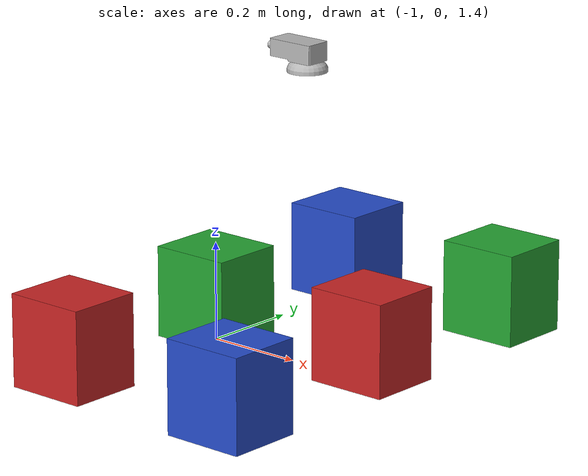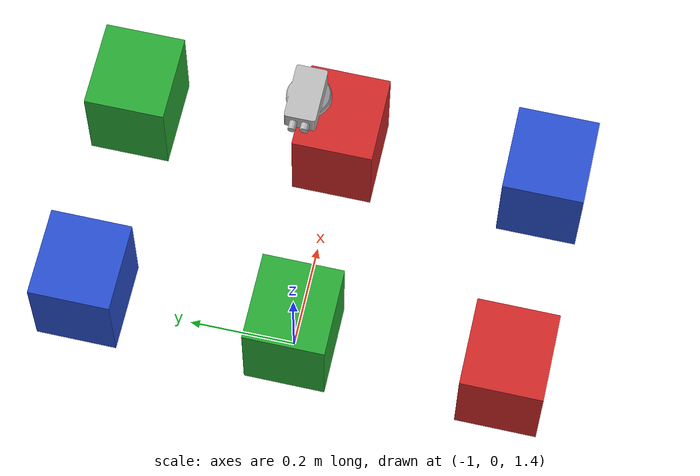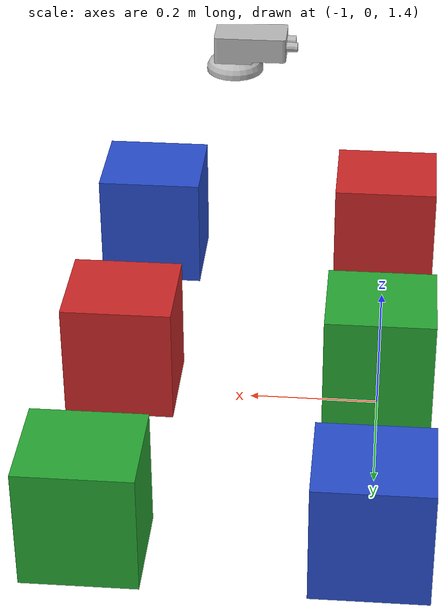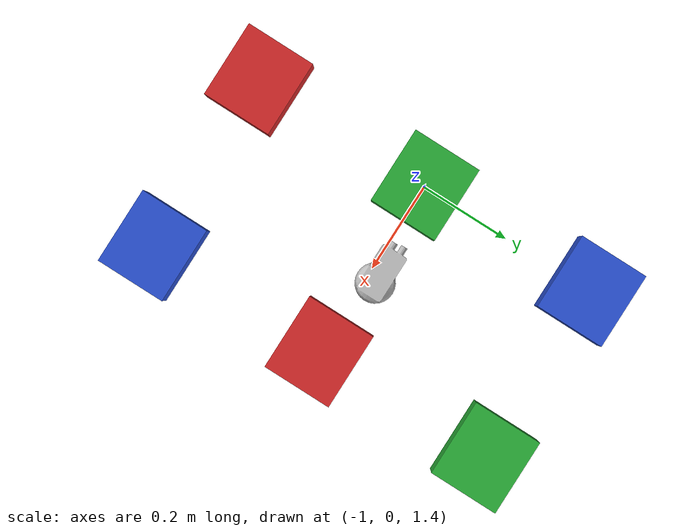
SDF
<sdf version="1.6">
 <world name="default">
  <plugin name="ros_link_attacher_plugin" filename="libgazebo_ros_link_attacher.so"/>
  <gravity>0 0 -9.8</gravity>
  <physics default="0" name="default_physics" type="ode">
   <max_step_size>0.001</max_step_size>
   <real_time_factor>1</real_time_factor>
   <real_time_update_rate>1000</real_time_update_rate>
  </physics>
  <include><uri>model://logical_camera2</uri><pose>-0.8 0 2.0 0 1.5708 0</pose></include>
  <model name="package_box_r1">
   <include>
    <uri>model://package_box_red</uri>
    <pose>-0.6 0 1.5 0 1.5708 0</pose>
    <static>false</static>
    <material>Gazebo/Red</material>
   </include>
  </model>
  <model name="package_box_r2">
   <include>
    <uri>model://package_box_red</uri>
    <pose>-1.0 -0.4 1.5 0 1.5708 0</pose>
    <static>false</static>
    <material>Gazebo/Red</material>
   </include>
  </model>
  <model name="package_box_g1">
   <include>
    <uri>model://package_box_green</uri>
    <pose>-0.6 0.4 1.5 0 1.5708 0</pose>
    <static>false</static>
    <material>Gazebo/Red</material>
   </include>
  </model>
  <model name="package_box_g2">
   <include>
    <uri>model://package_box_green</uri>
    <pose>-1.0 0 1.5 0 1.5708 0</pose>
    <static>false</static>
    <material>Gazebo/Red</material>
   </include>
  </model>
  <model name="package_box_b1">
   <include>
    <uri>model://package_box_blue</uri>
    <pose>-0.6 -0.4 1.5 0 1.5708 0</pose>
    <static>false</static>
    <material>Gazebo/Red</material>
   </include>
  </model>
  <model name="package_box_b2">
   <include>
    <uri>model://package_box_blue</uri>
    <pose>-1.0 0.4 1.5 0 1.5708 0</pose>
    <static>false</static>
    <material>Gazebo/Red</material>
   </include>
  </model>
  <light name="Warehouse_CeilingLight_003" type="point">
   <pose>0 0 5 0 0 0</pose>
   <diffuse>0.5 0.5 0.5 1</diffuse>
   <specular>0.2 0.2 0.2 1</specular>
   <attenuation>
    <range>80</range>
    <constant>0.1</constant>
    <linear>0.01</linear>
    <quadratic>0.001</quadratic>
   </attenuation>
   <direction>0 0 -1</direction>
  </light>
 </world>
</sdf>

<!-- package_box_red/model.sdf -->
<sdf version='1.6'>
  <model name='package_box_red'>
    <link name='link'>
      <inertial>
        <mass>1</mass>
        <inertia>
          <ixx>0.166667</ixx>
          <ixy>0</ixy>
          <ixz>0</ixz>
          <iyy>0.166667</iyy>
          <iyz>0</iyz>
          <izz>0.166667</izz>
        </inertia>
        <pose frame=''>0 0 0 0 -0 0</pose>
      </inertial>
      <self_collide>0</self_collide>
      <enable_wind>0</enable_wind>
      <kinematic>0</kinematic>
      <pose frame=''>0 0 0 -0 -0 -0</pose>
      <gravity>1</gravity>
      <visual name='visual'>
        <geometry>
          <box>
            <size>0.186354 0.153313 0.168908</size>
          </box>
        </geometry>
        <material>
          <script>
            <name>Gazebo/Red</name>
            <uri>file://media/materials/scripts/gazebo.material</uri>
          </script>
          <shader type='pixel'>
            <normal_map>__default__</normal_map>
          </shader>
          <ambient>1 0 0 1</ambient>
          <diffuse>1 0 0 1</diffuse>
          <specular>0.1 0.1 0.1 1</specular>
          <emissive>0 0 0 0</emissive>
        </material>
        <pose frame=''>0 0 0 0 -0 0</pose>
        <transparency>0</transparency>
        <cast_shadows>1</cast_shadows>
      </visual>
      <collision name='collision'>
        <laser_retro>0</laser_retro>
        <max_contacts>10</max_contacts>
        <pose frame=''>0 0 0 0 -0 0</pose>
        <geometry>
          <box>
            <size>0.186354 0.153313 0.168908</size>
          </box>
        </geometry>
        <surface>
          <friction>
            <ode>
              <mu>1</mu>
              <mu2>1</mu2>
              <fdir1>0 0 0</fdir1>
              <slip1>0</slip1>
              <slip2>0</slip2>
            </ode>
            <torsional>
              <coefficient>1</coefficient>
              <patch_radius>0</patch_radius>
              <surface_radius>0</surface_radius>
              <use_patch_radius>1</use_patch_radius>
              <ode>
                <slip>0</slip>
              </ode>
            </torsional>
          </friction>
          <bounce>
            <restitution_coefficient>0</restitution_coefficient>
            <threshold>1e+06</threshold>
          </bounce>
          <contact>
            <collide_without_contact>0</collide_without_contact>
            <collide_without_contact_bitmask>1</collide_without_contact_bitmask>
            <collide_bitmask>1</collide_bitmask>
            <ode>
              <soft_cfm>0</soft_cfm>
              <soft_erp>0.2</soft_erp>
              <kp>1e+13</kp>
              <kd>1</kd>
              <max_vel>0.01</max_vel>
              <min_depth>0</min_depth>
            </ode>
            <bullet>
              <split_impulse>1</split_impulse>
              <split_impulse_penetration_threshold>-0.01</split_impulse_penetration_threshold>
              <soft_cfm>0</soft_cfm>
              <soft_erp>0.2</soft_erp>
              <kp>1e+13</kp>
              <kd>1</kd>
            </bullet>
          </contact>
        </surface>
      </collision>
    </link>
    <static>0</static>
    <allow_auto_disable>1</allow_auto_disable>
  </model>
</sdf>

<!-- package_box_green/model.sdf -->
<sdf version='1.6'>
  <model name='package_box_green'>
    <link name='link'>
      <inertial>
        <mass>1</mass>
        <inertia>
          <ixx>0.166667</ixx>
          <ixy>0</ixy>
          <ixz>0</ixz>
          <iyy>0.166667</iyy>
          <iyz>0</iyz>
          <izz>0.166667</izz>
        </inertia>
        <pose frame=''>0 0 0 0 -0 0</pose>
      </inertial>
      <self_collide>0</self_collide>
      <enable_wind>0</enable_wind>
      <kinematic>0</kinematic>
      <pose frame=''>0 0 0 -0 -0 -0</pose>
      <gravity>1</gravity>
      <visual name='visual'>
        <geometry>
          <box>
            <size>0.186354 0.153313 0.168908</size>
          </box>
        </geometry>
        <material>
          <script>
            <name>Gazebo/Green</name>
            <uri>file://media/materials/scripts/gazebo.material</uri>
          </script>
          <shader type='pixel'>
            <normal_map>__default__</normal_map>
          </shader>
          <ambient>0 1 0 1</ambient>
          <diffuse>0 1 0 1</diffuse>
          <specular>0.1 0.1 0.1 1</specular>
          <emissive>0 0 0 0</emissive>
        </material>
        <pose frame=''>0 0 0 0 -0 0</pose>
        <transparency>0</transparency>
        <cast_shadows>1</cast_shadows>
      </visual>
      <collision name='collision'>
        <laser_retro>0</laser_retro>
        <max_contacts>10</max_contacts>
        <pose frame=''>0 0 0 0 -0 0</pose>
        <geometry>
          <box>
            <size>0.186354 0.153313 0.168908</size>
          </box>
        </geometry>
        <surface>
          <friction>
            <ode>
              <mu>1</mu>
              <mu2>1</mu2>
              <fdir1>0 0 0</fdir1>
              <slip1>0</slip1>
              <slip2>0</slip2>
            </ode>
            <torsional>
              <coefficient>1</coefficient>
              <patch_radius>0</patch_radius>
              <surface_radius>0</surface_radius>
              <use_patch_radius>1</use_patch_radius>
              <ode>
                <slip>0</slip>
              </ode>
            </torsional>
          </friction>
          <bounce>
            <restitution_coefficient>0</restitution_coefficient>
            <threshold>1e+06</threshold>
          </bounce>
          <contact>
            <collide_without_contact>0</collide_without_contact>
            <collide_without_contact_bitmask>1</collide_without_contact_bitmask>
            <collide_bitmask>1</collide_bitmask>
            <ode>
              <soft_cfm>0</soft_cfm>
              <soft_erp>0.2</soft_erp>
              <kp>1e+13</kp>
              <kd>1</kd>
              <max_vel>0.01</max_vel>
              <min_depth>0</min_depth>
            </ode>
            <bullet>
              <split_impulse>1</split_impulse>
              <split_impulse_penetration_threshold>-0.01</split_impulse_penetration_threshold>
              <soft_cfm>0</soft_cfm>
              <soft_erp>0.2</soft_erp>
              <kp>1e+13</kp>
              <kd>1</kd>
            </bullet>
          </contact>
        </surface>
      </collision>
    </link>
    <static>0</static>
    <allow_auto_disable>1</allow_auto_disable>
  </model>
</sdf>

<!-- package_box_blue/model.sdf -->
<sdf version='1.6'>
  <model name='package_box_blue'>
    <link name='link'>
      <inertial>
        <mass>1</mass>
        <inertia>
          <ixx>0.166667</ixx>
          <ixy>0</ixy>
          <ixz>0</ixz>
          <iyy>0.166667</iyy>
          <iyz>0</iyz>
          <izz>0.166667</izz>
        </inertia>
        <pose frame=''>0 0 0 0 -0 0</pose>
      </inertial>
      <self_collide>0</self_collide>
      <enable_wind>0</enable_wind>
      <kinematic>0</kinematic>
      <pose frame=''>0 0 0 -0 -0 -0</pose>
      <gravity>1</gravity>
      <visual name='visual'>
        <geometry>
          <box>
            <size>0.186354 0.153313 0.168908</size>
          </box>
        </geometry>
        <material>
          <script>
            <name>Gazebo/Blue</name>
            <uri>file://media/materials/scripts/gazebo.material</uri>
          </script>
          <shader type='pixel'>
            <normal_map>__default__</normal_map>
          </shader>
          <ambient>0 0 1 1</ambient>
          <diffuse>0 0 1 1</diffuse>
          <specular>0.1 0.1 0.1 1</specular>
          <emissive>0 0 0 0</emissive>
        </material>
        <pose frame=''>0 0 0 0 -0 0</pose>
        <transparency>0</transparency>
        <cast_shadows>1</cast_shadows>
      </visual>
      <collision name='collision'>
        <laser_retro>0</laser_retro>
        <max_contacts>10</max_contacts>
        <pose frame=''>0 0 0 0 -0 0</pose>
        <geometry>
          <box>
            <size>0.186354 0.153313 0.168908</size>
          </box>
        </geometry>
        <surface>
          <friction>
            <ode>
              <mu>1</mu>
              <mu2>1</mu2>
              <fdir1>0 0 0</fdir1>
              <slip1>0</slip1>
              <slip2>0</slip2>
            </ode>
            <torsional>
              <coefficient>1</coefficient>
              <patch_radius>0</patch_radius>
              <surface_radius>0</surface_radius>
              <use_patch_radius>1</use_patch_radius>
              <ode>
                <slip>0</slip>
              </ode>
            </torsional>
          </friction>
          <bounce>
            <restitution_coefficient>0</restitution_coefficient>
            <threshold>1e+06</threshold>
          </bounce>
          <contact>
            <collide_without_contact>0</collide_without_contact>
            <collide_without_contact_bitmask>1</collide_without_contact_bitmask>
            <collide_bitmask>1</collide_bitmask>
            <ode>
              <soft_cfm>0</soft_cfm>
              <soft_erp>0.2</soft_erp>
              <kp>1e+13</kp>
              <kd>1</kd>
              <max_vel>0.01</max_vel>
              <min_depth>0</min_depth>
            </ode>
            <bullet>
              <split_impulse>1</split_impulse>
              <split_impulse_penetration_threshold>-0.01</split_impulse_penetration_threshold>
              <soft_cfm>0</soft_cfm>
              <soft_erp>0.2</soft_erp>
              <kp>1e+13</kp>
              <kd>1</kd>
            </bullet>
          </contact>
        </surface>
      </collision>
    </link>
    <static>0</static>
    <allow_auto_disable>1</allow_auto_disable>
  </model>
</sdf>

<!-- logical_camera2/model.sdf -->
<sdf version="1.6">
  <model name="logical_camera_2">
    <plugin name="ros_logical_camera_2" filename="libROSLogicalCameraPlugin.so">
      <robotNamespace>/mte_roblab</robotNamespace>
    </plugin>
    <link name="logical_camera_2_link">
      <gravity>false</gravity>
      <inertial>
        <mass>0.1</mass>
        <inertia>
          <ixx>0.000166667</ixx>
          <iyy>0.000166667</iyy>
          <izz>0.000166667</izz>
        </inertia>
      </inertial>

      <collision name="collision">
        <pose>0 0.02 0 0 0 -1.5708</pose>
        <geometry>
          <mesh>
            <uri>model://logical_camera2/meshes/camera.dae</uri>
          </mesh>
        </geometry>
      </collision>

      <visual name="visual">
        <pose>0 0.02 0 0 0 -1.5708</pose>
        <geometry>
          <mesh>
            <uri>model://logical_camera2/meshes/camera.dae</uri>
          </mesh>
        </geometry>
      </visual>

      <sensor name="logical_camera_2" type="logical_camera">

        <logical_camera>
          <near>0.2</near>
          <far>1.0</far>
          <horizontal_fov>1.1</horizontal_fov>
          <aspect_ratio>2.0</aspect_ratio>
        </logical_camera>

        <visualize>true</visualize>
        <always_on>true</always_on>
        <update_rate>10</update_rate>
        <topic>logical_camera_2</topic>
      </sensor>
    </link>
  </model>
</sdf>
